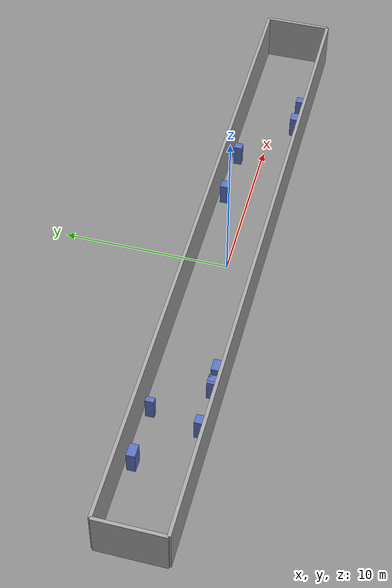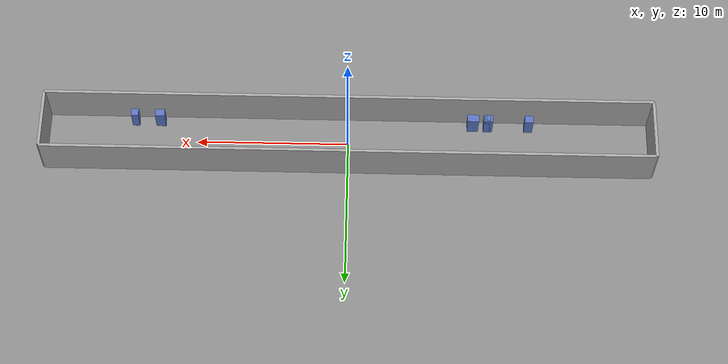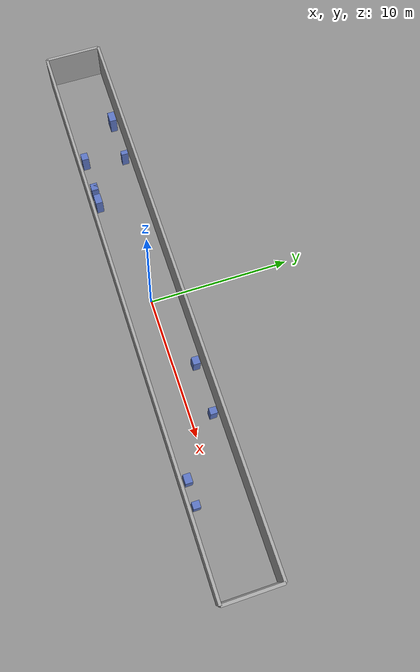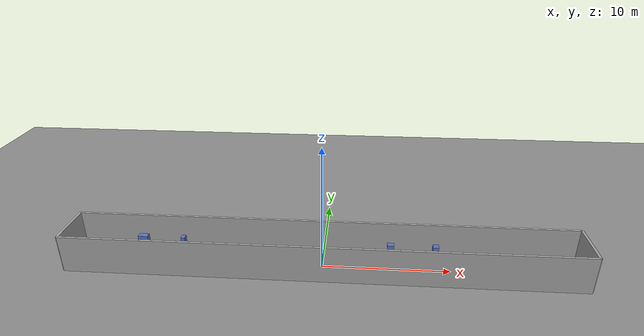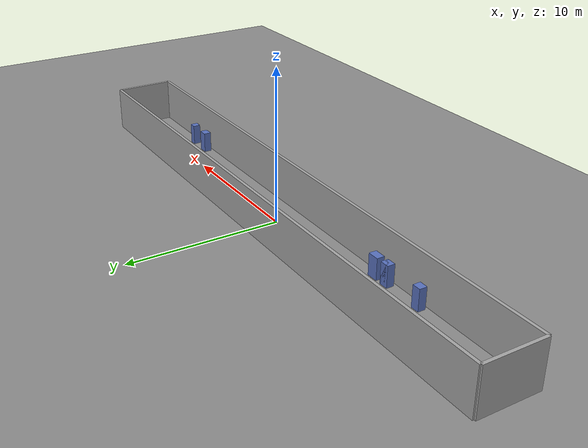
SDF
<?xml version="1.0"?>
<sdf version="1.6">
  <world name="corridor_normal_high_2">
    <physics name="default_physics" type="ode">
      <real_time_update_rate>1000</real_time_update_rate>
      <max_step_size>0.001</max_step_size>
    </physics>
    <scene>
      <ambient>0.35750000000000004 0.35750000000000004 0.35750000000000004 1</ambient>
      <background>0.08 0.09 0.12 1</background>
      <shadows>true</shadows>
    </scene>
    <light name="sun" type="directional">
      <cast_shadows>true</cast_shadows>
      <pose>0 0 20 0 0 0</pose>
      <diffuse>0.65 0.65 0.65 1.0</diffuse>
      <specular>0.65 0.65 0.65 1.0</specular>
      <direction>-0.5 0.2 -1</direction>
    </light>
    <model name="ground_plane">
      <static>true</static>
      <link name="link">
        <collision name="collision"><geometry><plane><normal>0 0 1</normal><size>100 100</size></plane></geometry></collision>
        <visual name="visual">
          <geometry><plane><normal>0 0 1</normal><size>100 100</size></plane></geometry>
          <material><ambient>0.35 0.35 0.35 1</ambient><diffuse>0.55 0.55 0.55 1</diffuse></material>
        </visual>
      </link>
    </model>

    <model name="wall_left">
      <static>true</static>
      <pose>0.0000 2.0000 1.5000 0 0 0</pose>
      <link name="link">
        <collision name="collision"><geometry><box><size>40 0.2 3</size></box></geometry></collision>
        <visual name="visual">
          <geometry><box><size>40 0.2 3</size></box></geometry>
          <material><ambient>0.65 0.65 0.65 1</ambient><diffuse>0.65 0.65 0.65 1</diffuse></material>
        </visual>
      </link>
    </model>

    <model name="wall_right">
      <static>true</static>
      <pose>0.0000 -2.0000 1.5000 0 0 0</pose>
      <link name="link">
        <collision name="collision"><geometry><box><size>40 0.2 3</size></box></geometry></collision>
        <visual name="visual">
          <geometry><box><size>40 0.2 3</size></box></geometry>
          <material><ambient>0.65 0.65 0.65 1</ambient><diffuse>0.65 0.65 0.65 1</diffuse></material>
        </visual>
      </link>
    </model>

    <model name="wall_end">
      <static>true</static>
      <pose>20.0000 0.0000 1.5000 0 0 0</pose>
      <link name="link">
        <collision name="collision"><geometry><box><size>0.2 4 3</size></box></geometry></collision>
        <visual name="visual">
          <geometry><box><size>0.2 4 3</size></box></geometry>
          <material><ambient>0.65 0.65 0.65 1</ambient><diffuse>0.65 0.65 0.65 1</diffuse></material>
        </visual>
      </link>
    </model>

    <model name="wall_start">
      <static>true</static>
      <pose>-20.0000 0.0000 1.5000 0 0 0</pose>
      <link name="link">
        <collision name="collision"><geometry><box><size>0.2 4 3</size></box></geometry></collision>
        <visual name="visual">
          <geometry><box><size>0.2 4 3</size></box></geometry>
          <material><ambient>0.65 0.65 0.65 1</ambient><diffuse>0.65 0.65 0.65 1</diffuse></material>
        </visual>
      </link>
    </model>

    <model name="corridor_feature_0">
      <static>true</static>
      <pose>-14.7406 1.4500 0.7000 0 0 0</pose>
      <link name="link">
        <collision name="collision"><geometry><box><size>0.7872989979983975 0.5 1.4</size></box></geometry></collision>
        <visual name="visual">
          <geometry><box><size>0.7872989979983975 0.5 1.4</size></box></geometry>
          <material><ambient>0.35 0.45 0.75 1</ambient><diffuse>0.35 0.45 0.75 1</diffuse></material>
        </visual>
      </link>
    </model>

    <model name="corridor_feature_1">
      <static>true</static>
      <pose>-8.2776 -1.4500 0.7000 0 0 0</pose>
      <link name="link">
        <collision name="collision"><geometry><box><size>0.747891552817763 0.5 1.4</size></box></geometry></collision>
        <visual name="visual">
          <geometry><box><size>0.747891552817763 0.5 1.4</size></box></geometry>
          <material><ambient>0.35 0.45 0.75 1</ambient><diffuse>0.35 0.45 0.75 1</diffuse></material>
        </visual>
      </link>
    </model>

    <model name="corridor_feature_2">
      <static>true</static>
      <pose>14.1633 -1.4500 0.7000 0 0 0</pose>
      <link name="link">
        <collision name="collision"><geometry><box><size>0.4679467866563575 0.5 1.4</size></box></geometry></collision>
        <visual name="visual">
          <geometry><box><size>0.4679467866563575 0.5 1.4</size></box></geometry>
          <material><ambient>0.35 0.45 0.75 1</ambient><diffuse>0.35 0.45 0.75 1</diffuse></material>
        </visual>
      </link>
    </model>

    <model name="corridor_feature_3">
      <static>true</static>
      <pose>12.4938 -1.4500 0.7000 0 0 0</pose>
      <link name="link">
        <collision name="collision"><geometry><box><size>0.62512177715844 0.5 1.4</size></box></geometry></collision>
        <visual name="visual">
          <geometry><box><size>0.62512177715844 0.5 1.4</size></box></geometry>
          <material><ambient>0.35 0.45 0.75 1</ambient><diffuse>0.35 0.45 0.75 1</diffuse></material>
        </visual>
      </link>
    </model>

    <model name="corridor_feature_4">
      <static>true</static>
      <pose>-9.2092 -1.4500 0.7000 0 0 0</pose>
      <link name="link">
        <collision name="collision"><geometry><box><size>0.4372062599234571 0.5 1.4</size></box></geometry></collision>
        <visual name="visual">
          <geometry><box><size>0.4372062599234571 0.5 1.4</size></box></geometry>
          <material><ambient>0.35 0.45 0.75 1</ambient><diffuse>0.35 0.45 0.75 1</diffuse></material>
        </visual>
      </link>
    </model>

    <model name="corridor_feature_5">
      <static>true</static>
      <pose>5.3728 1.4500 0.7000 0 0 0</pose>
      <link name="link">
        <collision name="collision"><geometry><box><size>0.5427437209508421 0.5 1.4</size></box></geometry></collision>
        <visual name="visual">
          <geometry><box><size>0.5427437209508421 0.5 1.4</size></box></geometry>
          <material><ambient>0.35 0.45 0.75 1</ambient><diffuse>0.35 0.45 0.75 1</diffuse></material>
        </visual>
      </link>
    </model>

    <model name="corridor_feature_6">
      <static>true</static>
      <pose>-11.4239 1.4500 0.7000 0 0 0</pose>
      <link name="link">
        <collision name="collision"><geometry><box><size>0.3324681324447769 0.5 1.4</size></box></geometry></collision>
        <visual name="visual">
          <geometry><box><size>0.3324681324447769 0.5 1.4</size></box></geometry>
          <material><ambient>0.35 0.45 0.75 1</ambient><diffuse>0.35 0.45 0.75 1</diffuse></material>
        </visual>
      </link>
    </model>

    <model name="corridor_feature_7">
      <static>true</static>
      <pose>8.9111 1.4500 0.7000 0 0 0</pose>
      <link name="link">
        <collision name="collision"><geometry><box><size>0.4583743046051569 0.5 1.4</size></box></geometry></collision>
        <visual name="visual">
          <geometry><box><size>0.4583743046051569 0.5 1.4</size></box></geometry>
          <material><ambient>0.35 0.45 0.75 1</ambient><diffuse>0.35 0.45 0.75 1</diffuse></material>
        </visual>
      </link>
    </model>

    <model name="corridor_feature_8">
      <static>true</static>
      <pose>-11.9781 -1.4500 0.7000 0 0 0</pose>
      <link name="link">
        <collision name="collision"><geometry><box><size>0.5540204579468136 0.5 1.4</size></box></geometry></collision>
        <visual name="visual">
          <geometry><box><size>0.5540204579468136 0.5 1.4</size></box></geometry>
          <material><ambient>0.35 0.45 0.75 1</ambient><diffuse>0.35 0.45 0.75 1</diffuse></material>
        </visual>
      </link>
    </model>

    <model name="corridor_feature_9">
      <static>true</static>
      <pose>-9.3210 -1.4500 0.7000 0 0 0</pose>
      <link name="link">
        <collision name="collision"><geometry><box><size>0.5377912162212433 0.5 1.4</size></box></geometry></collision>
        <visual name="visual">
          <geometry><box><size>0.5377912162212433 0.5 1.4</size></box></geometry>
          <material><ambient>0.35 0.45 0.75 1</ambient><diffuse>0.35 0.45 0.75 1</diffuse></material>
        </visual>
      </link>
    </model>
  </world>
</sdf>
